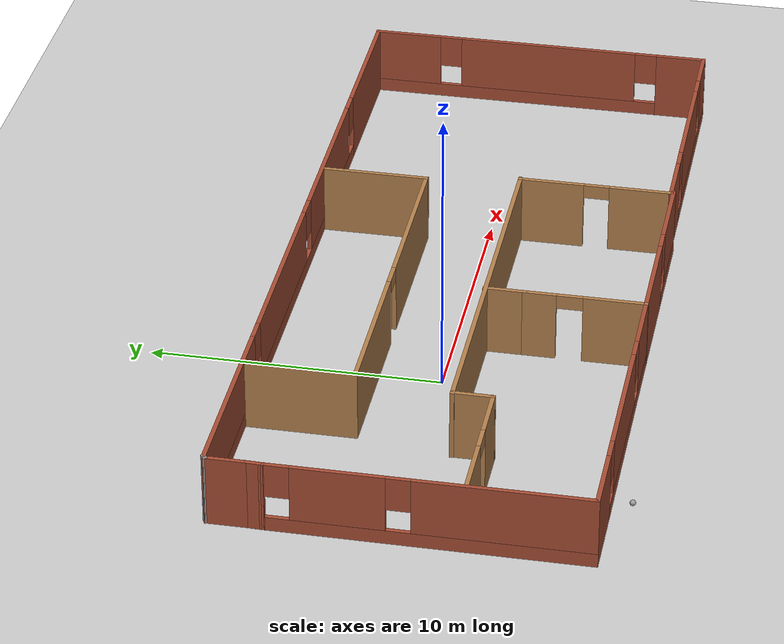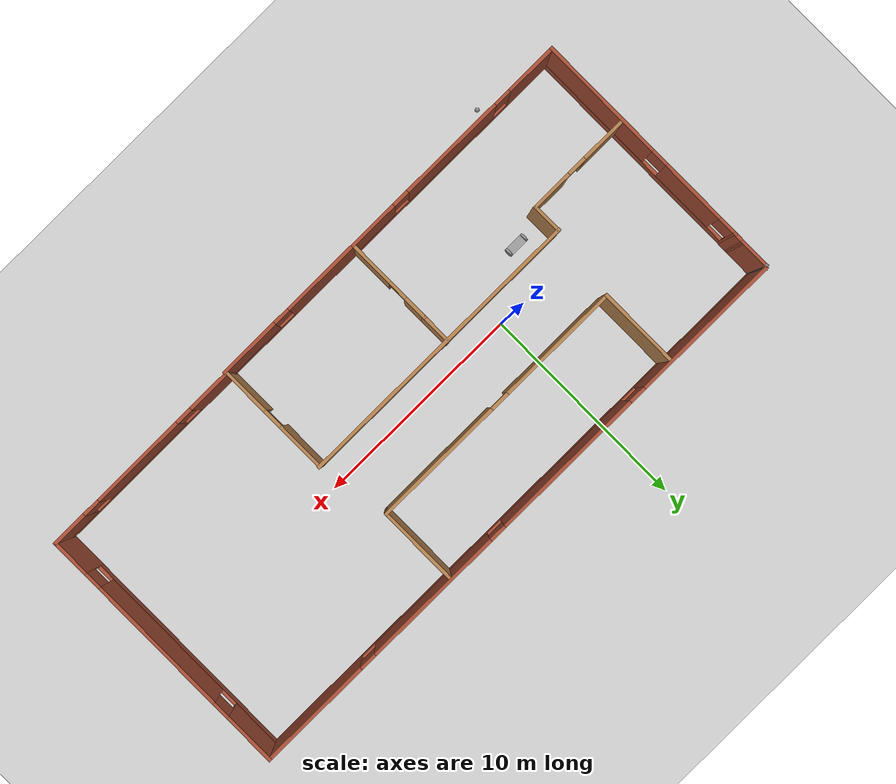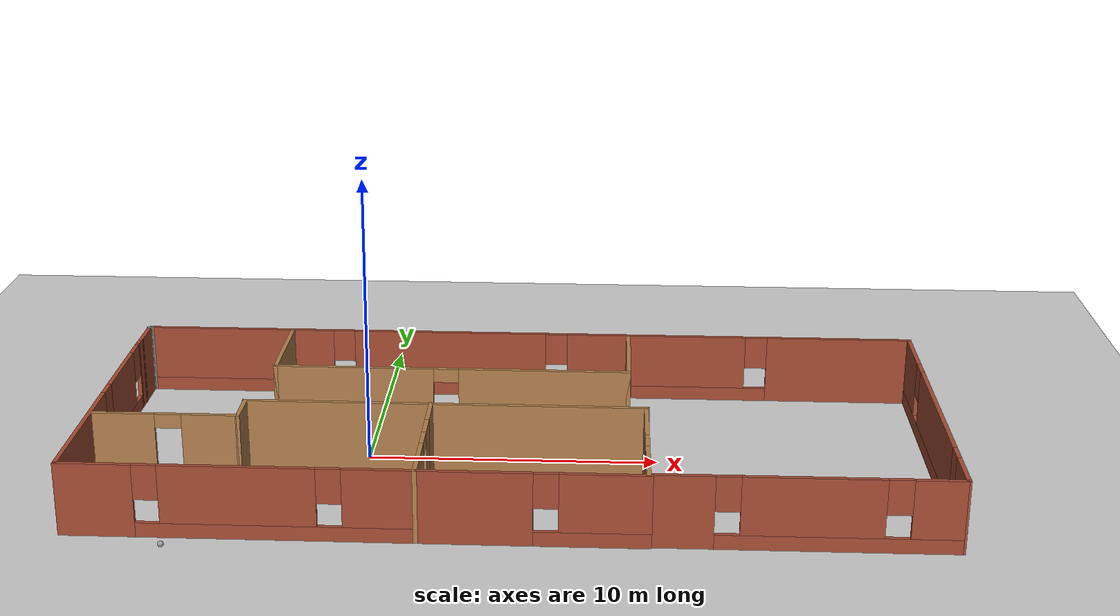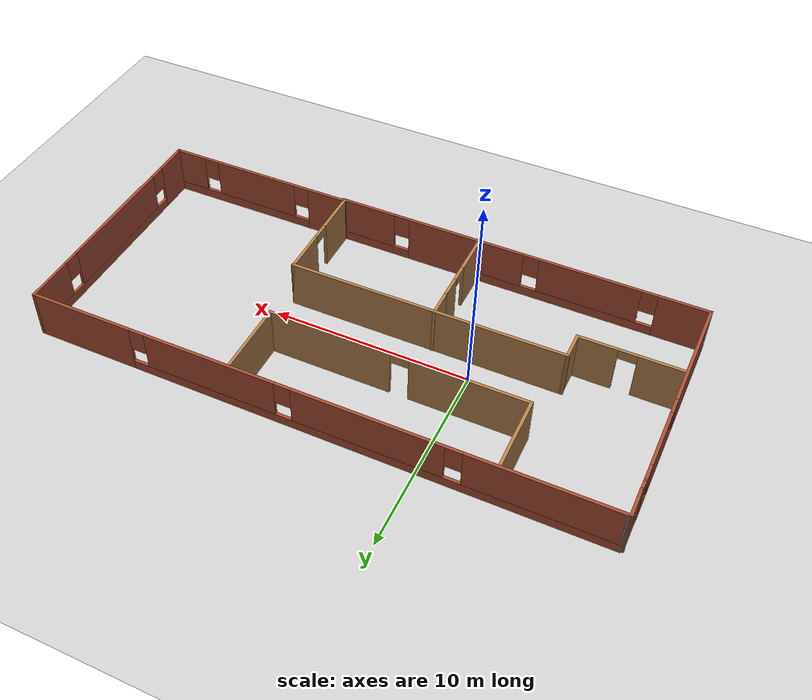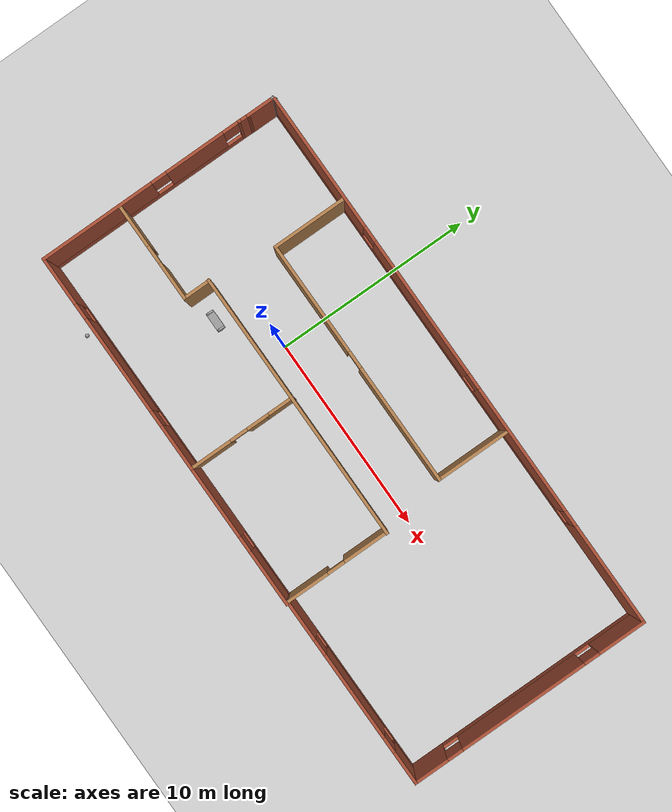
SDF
<sdf version="1.6">
 <world name="default">
  <plugin name="welcome" filename="libwelcome.so"/>
  <light name="sun" type="directional">
   <pose>0 0 10 0 -0 0</pose>
   <diffuse>0.8 0.8 0.8 1</diffuse>
   <specular>0.2 0.2 0.2 1</specular>
   <attenuation>
    <range>1000</range>
    <constant>0.9</constant>
    <linear>0.01</linear>
    <quadratic>0.001</quadratic>
   </attenuation>
   <direction>-0.5 0.1 -0.9</direction>
  </light>
  <model name="ground_plane">
   <static>1</static>
   <link name="link">
    <collision name="collision">
     <geometry><plane><normal>0 0 1</normal><size>100 100</size></plane></geometry>
     <surface>
      <contact><collide_bitmask>65535</collide_bitmask></contact>
      <friction><ode><mu>100</mu><mu2>50</mu2></ode></friction>
     </surface>
    </collision>
    <visual name="visual">
     <cast_shadows>0</cast_shadows>
     <geometry><plane><normal>0 0 1</normal><size>100 100</size></plane></geometry>
     <material>
      <script><uri>file://media/materials/scripts/gazebo.material</uri><name>Gazebo/Grey</name></script>
     </material>
    </visual>
   </link>
  </model>
  <gravity>0 0 -9.8</gravity>
  <magnetic_field>6e-06 2.3e-05 -4.2e-05</magnetic_field>
  <atmosphere type="adiabatic"/>
  <physics name="default_physics" default="0" type="ode">
   <max_step_size>0.001</max_step_size>
   <real_time_factor>1</real_time_factor>
   <real_time_update_rate>1000</real_time_update_rate>
  </physics>
  <scene><ambient>0.4 0.4 0.4 1</ambient><background>0.7 0.7 0.7 1</background><shadows>1</shadows></scene>
  <spherical_coordinates>
   <surface_model>EARTH_WGS84</surface_model>
   <latitude_deg>0</latitude_deg>
   <longitude_deg>0</longitude_deg>
   <elevation>0</elevation>
   <heading_deg>0</heading_deg>
  </spherical_coordinates>
  <model name="WheelsRobot">
   <link name="link_0">
    <inertial>
     <mass>1</mass>
     <inertia>
      <ixx>0.166667</ixx>
      <ixy>0</ixy>
      <ixz>0</ixz>
      <iyy>0.166667</iyy>
      <iyz>0</iyz>
      <izz>0.166667</izz>
     </inertia>
    </inertial>
    <visual name="visual">
     <geometry><box><size>0.8 0.4 0.2</size></box></geometry>
     <material>
      <lighting>1</lighting>
      <script><uri>file://media/materials/scripts/gazebo.material</uri><name>Gazebo/Grey</name></script>
      <shader type="pixel"><normal_map>__default__</normal_map></shader>
      <ambient>0.3 0.3 0.3 1</ambient>
      <diffuse>0.7 0.7 0.7 1</diffuse>
      <specular>0.01 0.01 0.01 1</specular>
      <emissive>0 0 0 1</emissive>
     </material>
    </visual>
    <collision name="collision">
     <geometry><box><size>0.8 0.4 0.2</size></box></geometry>
     <surface>
      <friction>
       <ode><mu>1</mu><mu2>1</mu2><fdir1>0 0 0</fdir1><slip1>0</slip1><slip2>0</slip2></ode>
       <torsional>
        <coefficient>1</coefficient>
        <patch_radius>0</patch_radius>
        <surface_radius>0</surface_radius>
        <use_patch_radius>1</use_patch_radius>
        <ode><slip>0</slip></ode>
       </torsional>
      </friction>
      <bounce><restitution_coefficient>0</restitution_coefficient><threshold>1e+06</threshold></bounce>
      <contact>
       <collide_without_contact>0</collide_without_contact>
       <collide_without_contact_bitmask>1</collide_without_contact_bitmask>
       <collide_bitmask>1</collide_bitmask>
       <ode>
        <soft_cfm>0</soft_cfm>
        <soft_erp>0.2</soft_erp>
        <kp>1e+13</kp>
        <kd>1</kd>
        <max_vel>0.01</max_vel>
        <min_depth>0</min_depth>
       </ode>
       <bullet>
        <split_impulse>1</split_impulse>
        <split_impulse_penetration_threshold>-0.01</split_impulse_penetration_threshold>
        <soft_cfm>0</soft_cfm>
        <soft_erp>0.2</soft_erp>
        <kp>1e+13</kp>
        <kd>1</kd>
       </bullet>
      </contact>
     </surface>
    </collision>
   </link>
   <link name="link_1">
    <pose>0.450159 0 0 0 -0 0</pose>
    <inertial>
     <mass>1</mass>
     <inertia><ixx>0.145833</ixx><ixy>0</ixy><ixz>0</ixz><iyy>0.145833</iyy><iyz>0</iyz><izz>0.125</izz></inertia>
    </inertial>
    <visual name="visual">
     <pose>0 0 0 0 1.57 0</pose>
     <geometry><cylinder><radius>0.2</radius><length>0.1</length></cylinder></geometry>
     <material>
      <lighting>1</lighting>
      <script><uri>file://media/materials/scripts/gazebo.material</uri><name>Gazebo/Grey</name></script>
      <shader type="pixel"><normal_map>__default__</normal_map></shader>
      <ambient>0.3 0.3 0.3 1</ambient>
      <diffuse>0.7 0.7 0.7 1</diffuse>
      <specular>0.01 0.01 0.01 1</specular>
      <emissive>0 0 0 1</emissive>
     </material>
    </visual>
    <collision name="collision">
     <pose>0 0 0 0 1.57 0</pose>
     <geometry><cylinder><radius>0.2</radius><length>0.1</length></cylinder></geometry>
     <surface>
      <friction>
       <ode><mu>1</mu><mu2>1</mu2><fdir1>0 0 0</fdir1><slip1>0</slip1><slip2>0</slip2></ode>
       <torsional>
        <coefficient>1</coefficient>
        <patch_radius>0</patch_radius>
        <surface_radius>0</surface_radius>
        <use_patch_radius>1</use_patch_radius>
        <ode><slip>0</slip></ode>
       </torsional>
      </friction>
      <bounce><restitution_coefficient>0</restitution_coefficient><threshold>1e+06</threshold></bounce>
      <contact>
       <collide_without_contact>0</collide_without_contact>
       <collide_without_contact_bitmask>1</collide_without_contact_bitmask>
       <collide_bitmask>1</collide_bitmask>
       <ode>
        <soft_cfm>0</soft_cfm>
        <soft_erp>0.2</soft_erp>
        <kp>1e+13</kp>
        <kd>1</kd>
        <max_vel>0.01</max_vel>
        <min_depth>0</min_depth>
       </ode>
       <bullet>
        <split_impulse>1</split_impulse>
        <split_impulse_penetration_threshold>-0.01</split_impulse_penetration_threshold>
        <soft_cfm>0</soft_cfm>
        <soft_erp>0.2</soft_erp>
        <kp>1e+13</kp>
        <kd>1</kd>
       </bullet>
      </contact>
     </surface>
    </collision>
   </link>
   <link name="link_1_clone">
    <pose>-0.450159 0 0 0 -0 0</pose>
    <inertial>
     <mass>1</mass>
     <inertia><ixx>0.145833</ixx><ixy>0</ixy><ixz>0</ixz><iyy>0.145833</iyy><iyz>0</iyz><izz>0.125</izz></inertia>
    </inertial>
    <visual name="visual">
     <pose>0 0 0 0 1.57 0</pose>
     <geometry><cylinder><radius>0.2</radius><length>0.1</length></cylinder></geometry>
     <material>
      <lighting>1</lighting>
      <script><uri>file://media/materials/scripts/gazebo.material</uri><name>Gazebo/Grey</name></script>
      <shader type="pixel"><normal_map>__default__</normal_map></shader>
      <ambient>0.3 0.3 0.3 1</ambient>
      <diffuse>0.7 0.7 0.7 1</diffuse>
      <specular>0.01 0.01 0.01 1</specular>
      <emissive>0 0 0 1</emissive>
     </material>
    </visual>
    <collision name="collision">
     <pose>0 0 0 0 1.57 0</pose>
     <geometry><cylinder><radius>0.2</radius><length>0.1</length></cylinder></geometry>
     <surface>
      <friction>
       <ode><mu>1</mu><mu2>1</mu2><fdir1>0 0 0</fdir1><slip1>0</slip1><slip2>0</slip2></ode>
       <torsional>
        <coefficient>1</coefficient>
        <patch_radius>0</patch_radius>
        <surface_radius>0</surface_radius>
        <use_patch_radius>1</use_patch_radius>
        <ode><slip>0</slip></ode>
       </torsional>
      </friction>
      <bounce><restitution_coefficient>0</restitution_coefficient><threshold>1e+06</threshold></bounce>
      <contact>
       <collide_without_contact>0</collide_without_contact>
       <collide_without_contact_bitmask>1</collide_without_contact_bitmask>
       <collide_bitmask>1</collide_bitmask>
       <ode>
        <soft_cfm>0</soft_cfm>
        <soft_erp>0.2</soft_erp>
        <kp>1e+13</kp>
        <kd>1</kd>
        <max_vel>0.01</max_vel>
        <min_depth>0</min_depth>
       </ode>
       <bullet>
        <split_impulse>1</split_impulse>
        <split_impulse_penetration_threshold>-0.01</split_impulse_penetration_threshold>
        <soft_cfm>0</soft_cfm>
        <soft_erp>0.2</soft_erp>
        <kp>1e+13</kp>
        <kd>1</kd>
       </bullet>
      </contact>
     </surface>
    </collision>
   </link>
   <joint name="link_0_JOINT_0" type="revolute">
    <parent>link_0</parent>
    <child>link_1</child>
    <axis>
     <xyz>1 0 0</xyz>
     <use_parent_model_frame>0</use_parent_model_frame>
     <limit>
      <lower>-1.79769e+308</lower>
      <upper>1.79769e+308</upper>
      <effort>-1</effort>
      <velocity>-1</velocity>
     </limit>
     <dynamics>
      <spring_reference>0</spring_reference>
      <spring_stiffness>0</spring_stiffness>
      <damping>0</damping>
     </dynamics>
    </axis>
    <physics>
     <ode><limit><cfm>0</cfm><erp>0.2</erp></limit><suspension><cfm>0</cfm><erp>0.2</erp></suspension></ode>
    </physics>
   </joint>
   <joint name="link_0_JOINT_1" type="revolute">
    <parent>link_0</parent>
    <child>link_1_clone</child>
    <axis>
     <xyz>1 0 0</xyz>
     <use_parent_model_frame>0</use_parent_model_frame>
     <limit>
      <lower>-1.79769e+308</lower>
      <upper>1.79769e+308</upper>
      <effort>-1</effort>
      <velocity>-1</velocity>
     </limit>
     <dynamics>
      <spring_reference>0</spring_reference>
      <spring_stiffness>0</spring_stiffness>
      <damping>0</damping>
     </dynamics>
    </axis>
    <physics>
     <ode><limit><cfm>0</cfm><erp>0.2</erp></limit><suspension><cfm>0</cfm><erp>0.2</erp></suspension></ode>
    </physics>
   </joint>
   <static>0</static>
   <pose>-2.81486 -1.91932 0.20004 0 -0 0</pose>
  </model>
  <model name="BiggerHouse">
   <pose>5.1317 -0.252234 0 0 -0 0</pose>
   <link name="Wall_0">
    <pose>-14.2181 -0.938726 0 0 0 -1.5708</pose>
    <visual name="Wall_0_Visual_0">
     <pose>-5.28756 0 1.25 0 -0 0</pose>
     <geometry><box><size>0.174879 0.15 2.5</size></box></geometry>
     <material>
      <script><uri>file://media/materials/scripts/gazebo.material</uri><name>Gazebo/Bricks</name></script>
      <ambient>1 1 1 1</ambient>
     </material>
     <meta><layer>0</layer></meta>
    </visual>
    <collision name="Wall_0_Collision_0">
     <geometry><box><size>0.174879 0.15 2.5</size></box></geometry>
     <pose>-5.28756 0 1.25 0 -0 0</pose>
    </collision>
    <visual name="Wall_0_Visual_1">
     <pose>0.08744 0 0.25 0 -0 0</pose>
     <geometry><box><size>10.5751 0.15 0.5</size></box></geometry>
     <material>
      <script><uri>file://media/materials/scripts/gazebo.material</uri><name>Gazebo/Bricks</name></script>
      <ambient>1 1 1 1</ambient>
     </material>
     <meta><layer>0</layer></meta>
    </visual>
    <collision name="Wall_0_Collision_1">
     <geometry><box><size>10.5751 0.15 0.5</size></box></geometry>
     <pose>0.08744 0 0.25 0 -0 0</pose>
    </collision>
    <visual name="Wall_0_Visual_2">
     <pose>-2.86757 0 1.5 0 -0 0</pose>
     <geometry><box><size>3.0651 0.15 2</size></box></geometry>
     <material>
      <script><uri>file://media/materials/scripts/gazebo.material</uri><name>Gazebo/Bricks</name></script>
      <ambient>1 1 1 1</ambient>
     </material>
     <meta><layer>0</layer></meta>
    </visual>
    <collision name="Wall_0_Collision_2">
     <geometry><box><size>3.0651 0.15 2</size></box></geometry>
     <pose>-2.86757 0 1.5 0 -0 0</pose>
    </collision>
    <visual name="Wall_0_Visual_3">
     <pose>2.41999 0 1.5 0 -0 0</pose>
     <geometry><box><size>5.91002 0.15 2</size></box></geometry>
     <material>
      <script><uri>file://media/materials/scripts/gazebo.material</uri><name>Gazebo/Bricks</name></script>
      <ambient>1 1 1 1</ambient>
     </material>
     <meta><layer>0</layer></meta>
    </visual>
    <collision name="Wall_0_Collision_3">
     <geometry><box><size>5.91002 0.15 2</size></box></geometry>
     <pose>2.41999 0 1.5 0 -0 0</pose>
    </collision>
    <visual name="Wall_0_Visual_4">
     <pose>-4.80012 0 1.9 0 -0 0</pose>
     <geometry><box><size>0.8 0.15 1.2</size></box></geometry>
     <material>
      <script><uri>file://media/materials/scripts/gazebo.material</uri><name>Gazebo/Bricks</name></script>
      <ambient>1 1 1 1</ambient>
     </material>
     <meta><layer>0</layer></meta>
    </visual>
    <collision name="Wall_0_Collision_4">
     <geometry><box><size>0.8 0.15 1.2</size></box></geometry>
     <pose>-4.80012 0 1.9 0 -0 0</pose>
    </collision>
    <visual name="Wall_0_Visual_5">
     <pose>-0.935016 0 1.9 0 -0 0</pose>
     <geometry><box><size>0.8 0.15 1.2</size></box></geometry>
     <material>
      <script><uri>file://media/materials/scripts/gazebo.material</uri><name>Gazebo/Bricks</name></script>
      <ambient>1 1 1 1</ambient>
     </material>
     <meta><layer>0</layer></meta>
    </visual>
    <collision name="Wall_0_Collision_5">
     <geometry><box><size>0.8 0.15 1.2</size></box></geometry>
     <pose>-0.935016 0 1.9 0 -0 0</pose>
    </collision>
   </link>
   <link name="Wall_1">
    <pose>-8.54306 -6.23873 0 0 -0 0</pose>
    <visual name="Wall_1_Visual_0">
     <pose>-4.49726 0 1.25 0 -0 0</pose>
     <geometry><box><size>2.50548 0.15 2.5</size></box></geometry>
     <material>
      <script><uri>file://media/materials/scripts/gazebo.material</uri><name>Gazebo/Bricks</name></script>
      <ambient>1 1 1 1</ambient>
     </material>
     <meta><layer>0</layer></meta>
    </visual>
    <collision name="Wall_1_Collision_0">
     <geometry><box><size>2.50548 0.15 2.5</size></box></geometry>
     <pose>-4.49726 0 1.25 0 -0 0</pose>
    </collision>
    <visual name="Wall_1_Visual_1">
     <pose>1.25274 0 0.25 0 -0 0</pose>
     <geometry><box><size>8.99452 0.15 0.5</size></box></geometry>
     <material>
      <script><uri>file://media/materials/scripts/gazebo.material</uri><name>Gazebo/Bricks</name></script>
      <ambient>1 1 1 1</ambient>
     </material>
     <meta><layer>0</layer></meta>
    </visual>
    <collision name="Wall_1_Collision_1">
     <geometry><box><size>8.99452 0.15 0.5</size></box></geometry>
     <pose>1.25274 0 0.25 0 -0 0</pose>
    </collision>
    <visual name="Wall_1_Visual_2">
     <pose>0.060541 0 1.5 0 -0 0</pose>
     <geometry><box><size>5.01012 0.15 2</size></box></geometry>
     <material>
      <script><uri>file://media/materials/scripts/gazebo.material</uri><name>Gazebo/Bricks</name></script>
      <ambient>1 1 1 1</ambient>
     </material>
     <meta><layer>0</layer></meta>
    </visual>
    <collision name="Wall_1_Collision_2">
     <geometry><box><size>5.01012 0.15 2</size></box></geometry>
     <pose>0.060541 0 1.5 0 -0 0</pose>
    </collision>
    <visual name="Wall_1_Visual_3">
     <pose>4.5578 0 1.5 0 -0 0</pose>
     <geometry><box><size>2.3844 0.15 2</size></box></geometry>
     <material>
      <script><uri>file://media/materials/scripts/gazebo.material</uri><name>Gazebo/Bricks</name></script>
      <ambient>1 1 1 1</ambient>
     </material>
     <meta><layer>0</layer></meta>
    </visual>
    <collision name="Wall_1_Collision_3">
     <geometry><box><size>2.3844 0.15 2</size></box></geometry>
     <pose>4.5578 0 1.5 0 -0 0</pose>
    </collision>
    <visual name="Wall_1_Visual_4">
     <pose>-2.84452 0 1.9 0 -0 0</pose>
     <geometry><box><size>0.8 0.15 1.2</size></box></geometry>
     <material>
      <script><uri>file://media/materials/scripts/gazebo.material</uri><name>Gazebo/Bricks</name></script>
      <ambient>1 1 1 1</ambient>
     </material>
     <meta><layer>0</layer></meta>
    </visual>
    <collision name="Wall_1_Collision_4">
     <geometry><box><size>0.8 0.15 1.2</size></box></geometry>
     <pose>-2.84452 0 1.9 0 -0 0</pose>
    </collision>
    <visual name="Wall_1_Visual_5">
     <pose>2.9656 0 1.9 0 -0 0</pose>
     <geometry><box><size>0.8 0.15 1.2</size></box></geometry>
     <material>
      <script><uri>file://media/materials/scripts/gazebo.material</uri><name>Gazebo/Bricks</name></script>
      <ambient>1 1 1 1</ambient>
     </material>
     <meta><layer>0</layer></meta>
    </visual>
    <collision name="Wall_1_Collision_5">
     <geometry><box><size>0.8 0.15 1.2</size></box></geometry>
     <pose>2.9656 0 1.9 0 -0 0</pose>
    </collision>
   </link>
   <link name="Wall_10">
    <collision name="Wall_10_Collision">
     <geometry><box><size>0.15 0.15 2.5</size></box></geometry>
     <pose>0 0 1.25 0 -0 0</pose>
    </collision>
    <visual name="Wall_10_Visual">
     <pose>0 0 1.25 0 -0 0</pose>
     <geometry><box><size>0.15 0.15 2.5</size></box></geometry>
     <material>
      <script><uri>file://media/materials/scripts/gazebo.material</uri><name>Gazebo/Grey</name></script>
      <ambient>1 1 1 1</ambient>
     </material>
     <meta><layer>0</layer></meta>
    </visual>
    <pose>-14.1181 6.21127 0 0 -0 0</pose>
   </link>
   <link name="Wall_11">
    <collision name="Wall_11_Collision">
     <geometry><box><size>0.25 0.15 2.5</size></box></geometry>
     <pose>0 0 1.25 0 -0 0</pose>
    </collision>
    <visual name="Wall_11_Visual">
     <pose>0 0 1.25 0 -0 0</pose>
     <geometry><box><size>0.25 0.15 2.5</size></box></geometry>
     <material>
      <script><uri>file://media/materials/scripts/gazebo.material</uri><name>Gazebo/Grey</name></script>
      <ambient>1 1 1 1</ambient>
     </material>
     <meta><layer>0</layer></meta>
    </visual>
    <pose>-14.1614 6.18627 0 0 0 -2.61799</pose>
   </link>
   <link name="Wall_12">
    <collision name="Wall_12_Collision">
     <geometry><box><size>1.5 0.15 2.5</size></box></geometry>
     <pose>0 0 1.25 0 -0 0</pose>
    </collision>
    <visual name="Wall_12_Visual">
     <pose>0 0 1.25 0 -0 0</pose>
     <geometry><box><size>1.5 0.15 2.5</size></box></geometry>
     <material>
      <script><uri>file://media/materials/scripts/gazebo.material</uri><name>Gazebo/Bricks</name></script>
      <ambient>1 1 1 1</ambient>
     </material>
     <meta><layer>0</layer></meta>
    </visual>
    <pose>-14.2047 5.48627 0 0 0 -1.5708</pose>
   </link>
   <link name="Wall_13">
    <collision name="Wall_13_Collision">
     <geometry><box><size>0.600199 0.15 2.5</size></box></geometry>
     <pose>0 0 1.25 0 -0 0</pose>
    </collision>
    <visual name="Wall_13_Visual">
     <pose>0 0 1.25 0 -0 0</pose>
     <geometry><box><size>0.600199 0.15 2.5</size></box></geometry>
     <material>
      <script><uri>file://media/materials/scripts/gazebo.material</uri><name>Gazebo/Bricks</name></script>
      <ambient>1 1 1 1</ambient>
     </material>
     <meta><layer>0</layer></meta>
    </visual>
    <pose>-14.2114 4.58627 0 0 0 -1.60056</pose>
   </link>
   <link name="Wall_15">
    <collision name="Wall_15_Collision">
     <geometry><box><size>3.75 0.15 2.5</size></box></geometry>
     <pose>0 0 1.25 0 -0 0</pose>
    </collision>
    <visual name="Wall_15_Visual">
     <pose>0 0 1.25 0 -0 0</pose>
     <geometry><box><size>3.75 0.15 2.5</size></box></geometry>
     <material>
      <script><uri>file://media/materials/scripts/gazebo.material</uri><name>Gazebo/Wood</name></script>
      <ambient>0.921569 0.807843 0.615686 1</ambient>
     </material>
     <meta><layer>0</layer></meta>
    </visual>
    <pose>-8.74926 4.25895 0 0 0 -1.5708</pose>
   </link>
   <link name="Wall_16">
    <pose>-2.44926 2.45895 0 0 -0 0</pose>
    <visual name="Wall_16_Visual_0">
     <pose>-3.50881 0 1.25 0 -0 0</pose>
     <geometry><box><size>5.73238 0.15 2.5</size></box></geometry>
     <material>
      <script><uri>file://media/materials/scripts/gazebo.material</uri><name>Gazebo/Wood</name></script>
      <ambient>0.921569 0.807843 0.615686 1</ambient>
     </material>
     <meta><layer>0</layer></meta>
    </visual>
    <collision name="Wall_16_Collision_0">
     <geometry><box><size>5.73238 0.15 2.5</size></box></geometry>
     <pose>-3.50881 0 1.25 0 -0 0</pose>
    </collision>
    <visual name="Wall_16_Visual_1">
     <pose>3.31619 0 1.25 0 -0 0</pose>
     <geometry><box><size>6.11761 0.15 2.5</size></box></geometry>
     <material>
      <script><uri>file://media/materials/scripts/gazebo.material</uri><name>Gazebo/Wood</name></script>
      <ambient>0.921569 0.807843 0.615686 1</ambient>
     </material>
     <meta><layer>0</layer></meta>
    </visual>
    <collision name="Wall_16_Collision_1">
     <geometry><box><size>6.11761 0.15 2.5</size></box></geometry>
     <pose>3.31619 0 1.25 0 -0 0</pose>
    </collision>
    <visual name="Wall_16_Visual_2">
     <pose>-0.192615 0 2.25 0 -0 0</pose>
     <geometry><box><size>0.9 0.15 0.5</size></box></geometry>
     <material>
      <script><uri>file://media/materials/scripts/gazebo.material</uri><name>Gazebo/Wood</name></script>
      <ambient>0.921569 0.807843 0.615686 1</ambient>
     </material>
     <meta><layer>0</layer></meta>
    </visual>
    <collision name="Wall_16_Collision_2">
     <geometry><box><size>0.9 0.15 0.5</size></box></geometry>
     <pose>-0.192615 0 2.25 0 -0 0</pose>
    </collision>
   </link>
   <link name="Wall_17">
    <collision name="Wall_17_Collision">
     <geometry><box><size>3.75 0.15 2.5</size></box></geometry>
     <pose>0 0 1.25 0 -0 0</pose>
    </collision>
    <visual name="Wall_17_Visual">
     <pose>0 0 1.25 0 -0 0</pose>
     <geometry><box><size>3.75 0.15 2.5</size></box></geometry>
     <material>
      <script><uri>file://media/materials/scripts/gazebo.material</uri><name>Gazebo/Wood</name></script>
      <ambient>0.921569 0.807843 0.615686 1</ambient>
     </material>
     <meta><layer>0</layer></meta>
    </visual>
    <pose>3.85074 4.25895 0 0 -0 1.5708</pose>
   </link>
   <link name="Wall_19">
    <pose>-11.6431 -2.13873 0 0 -0 3.14159</pose>
    <visual name="Wall_19_Visual_0">
     <pose>-1.50931 0 1.25 0 -0 0</pose>
     <geometry><box><size>1.98137 0.15 2.5</size></box></geometry>
     <material>
      <script><uri>file://media/materials/scripts/gazebo.material</uri><name>Gazebo/Wood</name></script>
      <ambient>0.921569 0.807843 0.615686 1</ambient>
     </material>
     <meta><layer>0</layer></meta>
    </visual>
    <collision name="Wall_19_Collision_0">
     <geometry><box><size>1.98137 0.15 2.5</size></box></geometry>
     <pose>-1.50931 0 1.25 0 -0 0</pose>
    </collision>
    <visual name="Wall_19_Visual_1">
     <pose>1.44069 0 1.25 0 -0 0</pose>
     <geometry><box><size>2.11863 0.15 2.5</size></box></geometry>
     <material>
      <script><uri>file://media/materials/scripts/gazebo.material</uri><name>Gazebo/Wood</name></script>
      <ambient>0.921569 0.807843 0.615686 1</ambient>
     </material>
     <meta><layer>0</layer></meta>
    </visual>
    <collision name="Wall_19_Collision_1">
     <geometry><box><size>2.11863 0.15 2.5</size></box></geometry>
     <pose>1.44069 0 1.25 0 -0 0</pose>
    </collision>
    <visual name="Wall_19_Visual_2">
     <pose>-0.068627 0 2.25 0 -0 0</pose>
     <geometry><box><size>0.9 0.15 0.5</size></box></geometry>
     <material>
      <script><uri>file://media/materials/scripts/gazebo.material</uri><name>Gazebo/Wood</name></script>
      <ambient>0.921569 0.807843 0.615686 1</ambient>
     </material>
     <meta><layer>0</layer></meta>
    </visual>
    <collision name="Wall_19_Collision_2">
     <geometry><box><size>0.9 0.15 0.5</size></box></geometry>
     <pose>-0.068627 0 2.25 0 -0 0</pose>
    </collision>
   </link>
   <link name="Wall_2">
    <pose>-2.86806 -4.18873 0 0 -0 1.5708</pose>
    <visual name="Wall_2_Visual_0">
     <pose>-1.02903 0 1.25 0 -0 0</pose>
     <geometry><box><size>2.19195 0.15 2.5</size></box></geometry>
     <material>
      <script><uri>file://media/materials/scripts/gazebo.material</uri><name>Gazebo/Wood</name></script>
      <ambient>1 1 1 1</ambient>
     </material>
     <meta><layer>0</layer></meta>
    </visual>
    <collision name="Wall_2_Collision_0">
     <geometry><box><size>2.19195 0.15 2.5</size></box></geometry>
     <pose>-1.02903 0 1.25 0 -0 0</pose>
    </collision>
    <visual name="Wall_2_Visual_1">
     <pose>1.54597 0 1.25 0 -0 0</pose>
     <geometry><box><size>1.15805 0.15 2.5</size></box></geometry>
     <material>
      <script><uri>file://media/materials/scripts/gazebo.material</uri><name>Gazebo/Wood</name></script>
      <ambient>1 1 1 1</ambient>
     </material>
     <meta><layer>0</layer></meta>
    </visual>
    <collision name="Wall_2_Collision_1">
     <geometry><box><size>1.15805 0.15 2.5</size></box></geometry>
     <pose>1.54597 0 1.25 0 -0 0</pose>
    </collision>
    <visual name="Wall_2_Visual_2">
     <pose>0.516948 0 2.25 0 -0 0</pose>
     <geometry><box><size>0.9 0.15 0.5</size></box></geometry>
     <material>
      <script><uri>file://media/materials/scripts/gazebo.material</uri><name>Gazebo/Wood</name></script>
      <ambient>1 1 1 1</ambient>
     </material>
     <meta><layer>0</layer></meta>
    </visual>
    <collision name="Wall_2_Collision_2">
     <geometry><box><size>0.9 0.15 0.5</size></box></geometry>
     <pose>0.516948 0 2.25 0 -0 0</pose>
    </collision>
   </link>
   <link name="Wall_24">
    <collision name="Wall_24_Collision">
     <geometry><box><size>1.5 0.15 2.5</size></box></geometry>
     <pose>0 0 1.25 0 -0 0</pose>
    </collision>
    <visual name="Wall_24_Visual">
     <pose>0 0 1.25 0 -0 0</pose>
     <geometry><box><size>1.5 0.15 2.5</size></box></geometry>
     <material>
      <script><uri>file://media/materials/scripts/gazebo.material</uri><name>Gazebo/Wood</name></script>
      <ambient>1 1 1 1</ambient>
     </material>
     <meta><layer>0</layer></meta>
    </visual>
    <pose>-2.86806 -1.46373 0 0 -0 1.5708</pose>
   </link>
   <link name="Wall_26">
    <pose>0.80694 -6.23873 0 0 -0 0</pose>
    <visual name="Wall_26_Visual_0">
     <pose>-1.86314 0 1.25 0 -0 0</pose>
     <geometry><box><size>3.77373 0.15 2.5</size></box></geometry>
     <material>
      <script><uri>file://media/materials/scripts/gazebo.material</uri><name>Gazebo/Bricks</name></script>
      <ambient>1 1 1 1</ambient>
     </material>
     <meta><layer>0</layer></meta>
    </visual>
    <collision name="Wall_26_Collision_0">
     <geometry><box><size>3.77373 0.15 2.5</size></box></geometry>
     <pose>-1.86314 0 1.25 0 -0 0</pose>
    </collision>
    <visual name="Wall_26_Visual_1">
     <pose>1.88686 0 0.25 0 -0 0</pose>
     <geometry><box><size>3.72627 0.15 0.5</size></box></geometry>
     <material>
      <script><uri>file://media/materials/scripts/gazebo.material</uri><name>Gazebo/Bricks</name></script>
      <ambient>1 1 1 1</ambient>
     </material>
     <meta><layer>0</layer></meta>
    </visual>
    <collision name="Wall_26_Collision_1">
     <geometry><box><size>3.72627 0.15 0.5</size></box></geometry>
     <pose>1.88686 0 0.25 0 -0 0</pose>
    </collision>
    <visual name="Wall_26_Visual_2">
     <pose>2.28686 0 1.5 0 -0 0</pose>
     <geometry><box><size>2.92627 0.15 2</size></box></geometry>
     <material>
      <script><uri>file://media/materials/scripts/gazebo.material</uri><name>Gazebo/Bricks</name></script>
      <ambient>1 1 1 1</ambient>
     </material>
     <meta><layer>0</layer></meta>
    </visual>
    <collision name="Wall_26_Collision_2">
     <geometry><box><size>2.92627 0.15 2</size></box></geometry>
     <pose>2.28686 0 1.5 0 -0 0</pose>
    </collision>
    <visual name="Wall_26_Visual_3">
     <pose>0.423728 0 1.9 0 -0 0</pose>
     <geometry><box><size>0.8 0.15 1.2</size></box></geometry>
     <material>
      <script><uri>file://media/materials/scripts/gazebo.material</uri><name>Gazebo/Bricks</name></script>
      <ambient>1 1 1 1</ambient>
     </material>
     <meta><layer>0</layer></meta>
    </visual>
    <collision name="Wall_26_Collision_3">
     <geometry><box><size>0.8 0.15 1.2</size></box></geometry>
     <pose>0.423728 0 1.9 0 -0 0</pose>
    </collision>
   </link>
   <link name="Wall_4">
    <collision name="Wall_4_Collision">
     <geometry><box><size>1.477 0.15 2.5</size></box></geometry>
     <pose>0 0 1.25 0 -0 0</pose>
    </collision>
    <visual name="Wall_4_Visual">
     <pose>0 0 1.25 0 -0 0</pose>
     <geometry><box><size>1.477 0.15 2.5</size></box></geometry>
     <material>
      <script><uri>file://media/materials/scripts/gazebo.material</uri><name>Gazebo/Wood</name></script>
      <ambient>0.921569 0.807843 0.615686 1</ambient>
     </material>
     <meta><layer>0</layer></meta>
    </visual>
    <pose>-9.21819 -1.47523 0 0 -0 1.57099</pose>
   </link>
   <link name="Wall_5">
    <collision name="Wall_5_Collision">
     <geometry><box><size>13.8439 0.15 2.5</size></box></geometry>
     <pose>0 0 1.25 0 -0 0</pose>
    </collision>
    <visual name="Wall_5_Visual">
     <pose>0 0 1.25 0 -0 0</pose>
     <geometry><box><size>13.8439 0.15 2.5</size></box></geometry>
     <material>
      <script><uri>file://media/materials/scripts/gazebo.material</uri><name>Gazebo/Wood</name></script>
      <ambient>0.921569 0.807843 0.615686 1</ambient>
     </material>
     <meta><layer>0</layer></meta>
    </visual>
    <pose>-2.39451 -0.811727 0 0 -0 0</pose>
   </link>
   <link name="Wall_6">
    <pose>4.41706 -3.48673 0 0 0 -1.5708</pose>
    <visual name="Wall_6_Visual_0">
     <pose>-1.57766 0 1.25 0 -0 0</pose>
     <geometry><box><size>2.34469 0.15 2.5</size></box></geometry>
     <material>
      <script><uri>file://media/materials/scripts/gazebo.material</uri><name>Gazebo/Wood</name></script>
      <ambient>1 1 1 1</ambient>
     </material>
     <meta><layer>0</layer></meta>
    </visual>
    <collision name="Wall_6_Collision_0">
     <geometry><box><size>2.34469 0.15 2.5</size></box></geometry>
     <pose>-1.57766 0 1.25 0 -0 0</pose>
    </collision>
    <visual name="Wall_6_Visual_1">
     <pose>1.62234 0 1.25 0 -0 0</pose>
     <geometry><box><size>2.25531 0.15 2.5</size></box></geometry>
     <material>
      <script><uri>file://media/materials/scripts/gazebo.material</uri><name>Gazebo/Wood</name></script>
      <ambient>1 1 1 1</ambient>
     </material>
     <meta><layer>0</layer></meta>
    </visual>
    <collision name="Wall_6_Collision_1">
     <geometry><box><size>2.25531 0.15 2.5</size></box></geometry>
     <pose>1.62234 0 1.25 0 -0 0</pose>
    </collision>
    <visual name="Wall_6_Visual_2">
     <pose>0.044687 0 2.25 0 -0 0</pose>
     <geometry><box><size>0.9 0.15 0.5</size></box></geometry>
     <material>
      <script><uri>file://media/materials/scripts/gazebo.material</uri><name>Gazebo/Wood</name></script>
      <ambient>1 1 1 1</ambient>
     </material>
     <meta><layer>0</layer></meta>
    </visual>
    <collision name="Wall_6_Collision_2">
     <geometry><box><size>0.9 0.15 0.5</size></box></geometry>
     <pose>0.044687 0 2.25 0 -0 0</pose>
    </collision>
   </link>
   <link name="Wall_7">
    <pose>9.3245 -6.15023 0 0 -0 0.002343</pose>
    <visual name="Wall_7_Visual_0">
     <pose>-3.90979 0 1.25 0 -0 0</pose>
     <geometry><box><size>2.14534 0.15 2.5</size></box></geometry>
     <material>
      <script><uri>file://media/materials/scripts/gazebo.material</uri><name>Gazebo/Bricks</name></script>
      <ambient>1 1 1 1</ambient>
     </material>
     <meta><layer>0</layer></meta>
    </visual>
    <collision name="Wall_7_Collision_0">
     <geometry><box><size>2.14534 0.15 2.5</size></box></geometry>
     <pose>-3.90979 0 1.25 0 -0 0</pose>
    </collision>
    <visual name="Wall_7_Visual_1">
     <pose>1.07267 0 0.25 0 -0 0</pose>
     <geometry><box><size>7.81957 0.15 0.5</size></box></geometry>
     <material>
      <script><uri>file://media/materials/scripts/gazebo.material</uri><name>Gazebo/Bricks</name></script>
      <ambient>1 1 1 1</ambient>
     </material>
     <meta><layer>0</layer></meta>
    </visual>
    <collision name="Wall_7_Collision_1">
     <geometry><box><size>7.81957 0.15 0.5</size></box></geometry>
     <pose>1.07267 0 0.25 0 -0 0</pose>
    </collision>
    <visual name="Wall_7_Visual_2">
     <pose>0.212969 0 1.5 0 -0 0</pose>
     <geometry><box><size>4.50018 0.15 2</size></box></geometry>
     <material>
      <script><uri>file://media/materials/scripts/gazebo.material</uri><name>Gazebo/Bricks</name></script>
      <ambient>1 1 1 1</ambient>
     </material>
     <meta><layer>0</layer></meta>
    </visual>
    <collision name="Wall_7_Collision_2">
     <geometry><box><size>4.50018 0.15 2</size></box></geometry>
     <pose>0.212969 0 1.5 0 -0 0</pose>
    </collision>
    <visual name="Wall_7_Visual_3">
     <pose>4.12276 0 1.5 0 -0 0</pose>
     <geometry><box><size>1.7194 0.15 2</size></box></geometry>
     <material>
      <script><uri>file://media/materials/scripts/gazebo.material</uri><name>Gazebo/Bricks</name></script>
      <ambient>1 1 1 1</ambient>
     </material>
     <meta><layer>0</layer></meta>
    </visual>
    <collision name="Wall_7_Collision_3">
     <geometry><box><size>1.7194 0.15 2</size></box></geometry>
     <pose>4.12276 0 1.5 0 -0 0</pose>
    </collision>
    <visual name="Wall_7_Visual_4">
     <pose>-2.43712 0 1.9 0 -0 0</pose>
     <geometry><box><size>0.8 0.15 1.2</size></box></geometry>
     <material>
      <script><uri>file://media/materials/scripts/gazebo.material</uri><name>Gazebo/Bricks</name></script>
      <ambient>1 1 1 1</ambient>
     </material>
     <meta><layer>0</layer></meta>
    </visual>
    <collision name="Wall_7_Collision_4">
     <geometry><box><size>0.8 0.15 1.2</size></box></geometry>
     <pose>-2.43712 0 1.9 0 -0 0</pose>
    </collision>
    <visual name="Wall_7_Visual_5">
     <pose>2.86306 0 1.9 0 -0 0</pose>
     <geometry><box><size>0.8 0.15 1.2</size></box></geometry>
     <material>
      <script><uri>file://media/materials/scripts/gazebo.material</uri><name>Gazebo/Bricks</name></script>
      <ambient>1 1 1 1</ambient>
     </material>
     <meta><layer>0</layer></meta>
    </visual>
    <collision name="Wall_7_Collision_5">
     <geometry><box><size>0.8 0.15 1.2</size></box></geometry>
     <pose>2.86306 0 1.9 0 -0 0</pose>
    </collision>
   </link>
   <link name="Wall_8">
    <pose>14.2319 0.036274 0 0 -0 1.5708</pose>
    <visual name="Wall_8_Visual_0">
     <pose>-5.33654 0 1.25 0 -0 0</pose>
     <geometry><box><size>1.82692 0.15 2.5</size></box></geometry>
     <material>
      <script><uri>file://media/materials/scripts/gazebo.material</uri><name>Gazebo/Bricks</name></script>
      <ambient>1 1 1 1</ambient>
     </material>
     <meta><layer>0</layer></meta>
    </visual>
    <collision name="Wall_8_Collision_0">
     <geometry><box><size>1.82692 0.15 2.5</size></box></geometry>
     <pose>-5.33654 0 1.25 0 -0 0</pose>
    </collision>
    <visual name="Wall_8_Visual_1">
     <pose>0.91346 0 0.25 0 -0 0</pose>
     <geometry><box><size>10.6731 0.15 0.5</size></box></geometry>
     <material>
      <script><uri>file://media/materials/scripts/gazebo.material</uri><name>Gazebo/Bricks</name></script>
      <ambient>1 1 1 1</ambient>
     </material>
     <meta><layer>0</layer></meta>
    </visual>
    <collision name="Wall_8_Collision_1">
     <geometry><box><size>10.6731 0.15 0.5</size></box></geometry>
     <pose>0.91346 0 0.25 0 -0 0</pose>
    </collision>
    <visual name="Wall_8_Visual_2">
     <pose>-0.328927 0 1.5 0 -0 0</pose>
     <geometry><box><size>6.58831 0.15 2</size></box></geometry>
     <material>
      <script><uri>file://media/materials/scripts/gazebo.material</uri><name>Gazebo/Bricks</name></script>
      <ambient>1 1 1 1</ambient>
     </material>
     <meta><layer>0</layer></meta>
    </visual>
    <collision name="Wall_8_Collision_2">
     <geometry><box><size>6.58831 0.15 2</size></box></geometry>
     <pose>-0.328927 0 1.5 0 -0 0</pose>
    </collision>
    <visual name="Wall_8_Visual_3">
     <pose>5.00761 0 1.5 0 -0 0</pose>
     <geometry><box><size>2.48477 0.15 2</size></box></geometry>
     <material>
      <script><uri>file://media/materials/scripts/gazebo.material</uri><name>Gazebo/Bricks</name></script>
      <ambient>1 1 1 1</ambient>
     </material>
     <meta><layer>0</layer></meta>
    </visual>
    <collision name="Wall_8_Collision_3">
     <geometry><box><size>2.48477 0.15 2</size></box></geometry>
     <pose>5.00761 0 1.5 0 -0 0</pose>
    </collision>
    <visual name="Wall_8_Visual_4">
     <pose>-4.02308 0 1.9 0 -0 0</pose>
     <geometry><box><size>0.8 0.15 1.2</size></box></geometry>
     <material>
      <script><uri>file://media/materials/scripts/gazebo.material</uri><name>Gazebo/Bricks</name></script>
      <ambient>1 1 1 1</ambient>
     </material>
     <meta><layer>0</layer></meta>
    </visual>
    <collision name="Wall_8_Collision_4">
     <geometry><box><size>0.8 0.15 1.2</size></box></geometry>
     <pose>-4.02308 0 1.9 0 -0 0</pose>
    </collision>
    <visual name="Wall_8_Visual_5">
     <pose>3.36523 0 1.9 0 -0 0</pose>
     <geometry><box><size>0.8 0.15 1.2</size></box></geometry>
     <material>
      <script><uri>file://media/materials/scripts/gazebo.material</uri><name>Gazebo/Bricks</name></script>
      <ambient>1 1 1 1</ambient>
     </material>
     <meta><layer>0</layer></meta>
    </visual>
    <collision name="Wall_8_Collision_5">
     <geometry><box><size>0.8 0.15 1.2</size></box></geometry>
     <pose>3.36523 0 1.9 0 -0 0</pose>
    </collision>
   </link>
   <link name="Wall_9">
    <pose>0.056939 6.21127 0 0 -0 3.14159</pose>
    <visual name="Wall_9_Visual_0">
     <pose>-11.5969 0 1.25 0 -0 0</pose>
     <geometry><box><size>5.30624 0.15 2.5</size></box></geometry>
     <material>
      <script><uri>file://media/materials/scripts/gazebo.material</uri><name>Gazebo/Bricks</name></script>
      <ambient>1 1 1 1</ambient>
     </material>
     <meta><layer>0</layer></meta>
    </visual>
    <collision name="Wall_9_Collision_0">
     <geometry><box><size>5.30624 0.15 2.5</size></box></geometry>
     <pose>-11.5969 0 1.25 0 -0 0</pose>
    </collision>
    <visual name="Wall_9_Visual_1">
     <pose>2.65312 0 0.25 0 -0 0</pose>
     <geometry><box><size>23.1938 0.15 0.5</size></box></geometry>
     <material>
      <script><uri>file://media/materials/scripts/gazebo.material</uri><name>Gazebo/Bricks</name></script>
      <ambient>1 1 1 1</ambient>
     </material>
     <meta><layer>0</layer></meta>
    </visual>
    <collision name="Wall_9_Collision_1">
     <geometry><box><size>23.1938 0.15 0.5</size></box></geometry>
     <pose>2.65312 0 0.25 0 -0 0</pose>
    </collision>
    <visual name="Wall_9_Visual_2">
     <pose>-4.83113 0 1.5 0 -0 0</pose>
     <geometry><box><size>6.62527 0.15 2</size></box></geometry>
     <material>
      <script><uri>file://media/materials/scripts/gazebo.material</uri><name>Gazebo/Bricks</name></script>
      <ambient>1 1 1 1</ambient>
     </material>
     <meta><layer>0</layer></meta>
    </visual>
    <collision name="Wall_9_Collision_2">
     <geometry><box><size>6.62527 0.15 2</size></box></geometry>
     <pose>-4.83113 0 1.5 0 -0 0</pose>
    </collision>
    <visual name="Wall_9_Visual_3">
     <pose>2.87259 0 1.5 0 -0 0</pose>
     <geometry><box><size>7.18217 0.15 2</size></box></geometry>
     <material>
      <script><uri>file://media/materials/scripts/gazebo.material</uri><name>Gazebo/Bricks</name></script>
      <ambient>1 1 1 1</ambient>
     </material>
     <meta><layer>0</layer></meta>
    </visual>
    <collision name="Wall_9_Collision_3">
     <geometry><box><size>7.18217 0.15 2</size></box></geometry>
     <pose>2.87259 0 1.5 0 -0 0</pose>
    </collision>
    <visual name="Wall_9_Visual_4">
     <pose>10.7568 0 1.5 0 -0 0</pose>
     <geometry><box><size>6.98632 0.15 2</size></box></geometry>
     <material>
      <script><uri>file://media/materials/scripts/gazebo.material</uri><name>Gazebo/Bricks</name></script>
      <ambient>1 1 1 1</ambient>
     </material>
     <meta><layer>0</layer></meta>
    </visual>
    <collision name="Wall_9_Collision_4">
     <geometry><box><size>6.98632 0.15 2</size></box></geometry>
     <pose>10.7568 0 1.5 0 -0 0</pose>
    </collision>
    <visual name="Wall_9_Visual_5">
     <pose>-8.54376 0 1.9 0 -0 0</pose>
     <geometry><box><size>0.8 0.15 1.2</size></box></geometry>
     <material>
      <script><uri>file://media/materials/scripts/gazebo.material</uri><name>Gazebo/Bricks</name></script>
      <ambient>1 1 1 1</ambient>
     </material>
     <meta><layer>0</layer></meta>
    </visual>
    <collision name="Wall_9_Collision_5">
     <geometry><box><size>0.8 0.15 1.2</size></box></geometry>
     <pose>-8.54376 0 1.9 0 -0 0</pose>
    </collision>
    <visual name="Wall_9_Visual_6">
     <pose>-1.11849 0 1.9 0 -0 0</pose>
     <geometry><box><size>0.8 0.15 1.2</size></box></geometry>
     <material>
      <script><uri>file://media/materials/scripts/gazebo.material</uri><name>Gazebo/Bricks</name></script>
      <ambient>1 1 1 1</ambient>
     </material>
     <meta><layer>0</layer></meta>
    </visual>
    <collision name="Wall_9_Collision_6">
     <geometry><box><size>0.8 0.15 1.2</size></box></geometry>
     <pose>-1.11849 0 1.9 0 -0 0</pose>
    </collision>
    <visual name="Wall_9_Visual_7">
     <pose>6.86368 0 1.9 0 -0 0</pose>
     <geometry><box><size>0.8 0.15 1.2</size></box></geometry>
     <material>
      <script><uri>file://media/materials/scripts/gazebo.material</uri><name>Gazebo/Bricks</name></script>
      <ambient>1 1 1 1</ambient>
     </material>
     <meta><layer>0</layer></meta>
    </visual>
    <collision name="Wall_9_Collision_7">
     <geometry><box><size>0.8 0.15 1.2</size></box></geometry>
     <pose>6.86368 0 1.9 0 -0 0</pose>
    </collision>
   </link>
   <static>1</static>
  </model>
  <model name="ball">
   <link name="link_0">
    <inertial>
     <mass>1</mass>
     <inertia><ixx>0.1</ixx><ixy>0</ixy><ixz>0</ixz><iyy>0.1</iyy><iyz>0</iyz><izz>0.1</izz></inertia>
    </inertial>
    <visual name="visual">
     <geometry><sphere><radius>0.1</radius></sphere></geometry>
     <material>
      <lighting>1</lighting>
      <script><uri>file://media/materials/scripts/gazebo.material</uri><name>Gazebo/Grey</name></script>
      <shader type="pixel"><normal_map>__default__</normal_map></shader>
      <ambient>1 1 1 1</ambient>
      <diffuse>1 1 1 1</diffuse>
      <specular>1 1 1 1</specular>
      <emissive>1 1 1 1</emissive>
     </material>
    </visual>
    <collision name="collision">
     <geometry><sphere><radius>0.1</radius></sphere></geometry>
     <surface>
      <friction>
       <ode><mu>1</mu><mu2>1</mu2><fdir1>0 0 0</fdir1><slip1>0</slip1><slip2>0</slip2></ode>
       <torsional>
        <coefficient>1</coefficient>
        <patch_radius>0</patch_radius>
        <surface_radius>0</surface_radius>
        <use_patch_radius>1</use_patch_radius>
        <ode><slip>0</slip></ode>
       </torsional>
      </friction>
      <bounce><restitution_coefficient>0</restitution_coefficient><threshold>1e+06</threshold></bounce>
      <contact>
       <collide_without_contact>0</collide_without_contact>
       <collide_without_contact_bitmask>1</collide_without_contact_bitmask>
       <collide_bitmask>1</collide_bitmask>
       <ode>
        <soft_cfm>0</soft_cfm>
        <soft_erp>0.2</soft_erp>
        <kp>1e+13</kp>
        <kd>1</kd>
        <max_vel>0.01</max_vel>
        <min_depth>0</min_depth>
       </ode>
       <bullet>
        <split_impulse>1</split_impulse>
        <split_impulse_penetration_threshold>-0.01</split_impulse_penetration_threshold>
        <soft_cfm>0</soft_cfm>
        <soft_erp>0.2</soft_erp>
        <kp>1e+13</kp>
        <kd>1</kd>
       </bullet>
      </contact>
     </surface>
    </collision>
   </link>
   <static>0</static>
   <pose>-5.7071 -7.19615 0.1 0 -0 0</pose>
  </model>
 </world>
</sdf>
